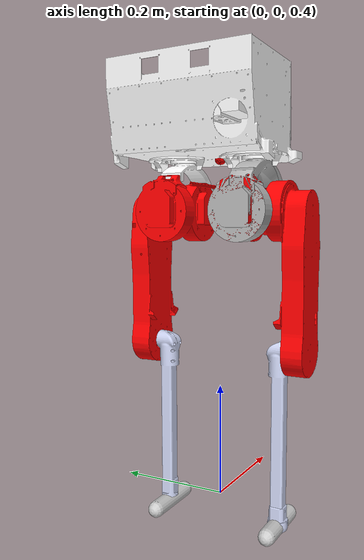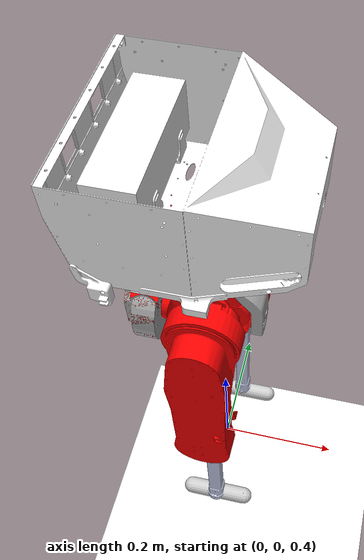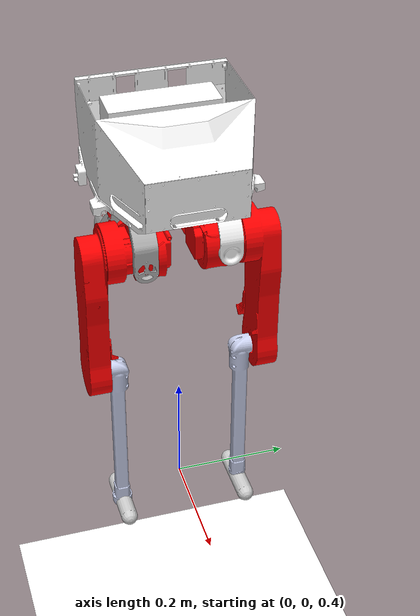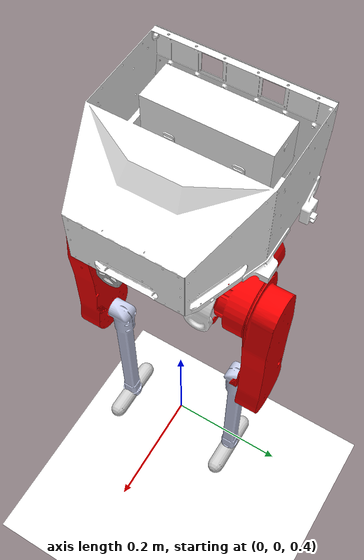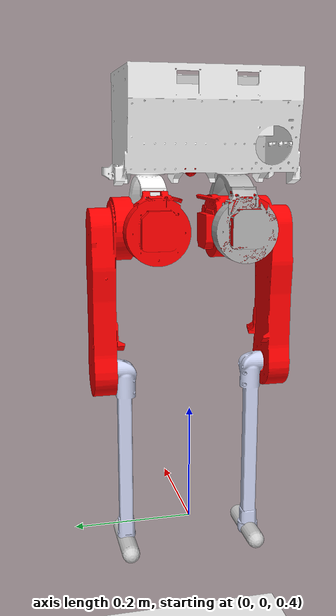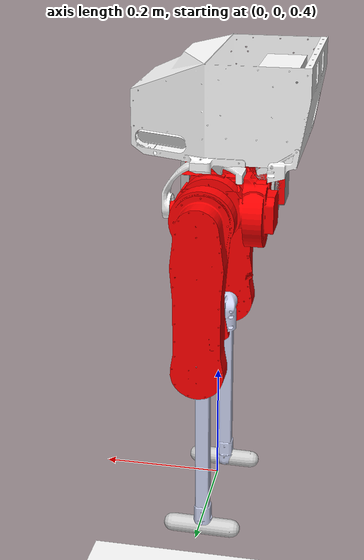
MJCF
<mujoco model="biped flat terrain scene">
  <include file="biped_RL.xml"/>

  <statistic center="0 0 0.1" extent="0.8" meansize="0.04"/>

  <visual>
    <headlight diffuse=".8 .8 .8" ambient=".2 .2 .2" specular="1 1 1"/>
    <rgba force="1 0 0 1"/>
    <global azimuth="120" elevation="-20"/>
    <map force="0.01"/>
    <scale forcewidth="0.3" contactwidth="0.5" contactheight="0.2"/>
    <quality shadowsize="8192"/>
  </visual>

  <asset>
    <texture type="skybox" builtin="gradient" rgb1="1 1 1" rgb2="1 1 1" width="800" height="800"/>
    <texture type="2d" name="groundplane" builtin="checker" mark="edge" rgb1="1 1 1" rgb2="1 1 1" markrgb="0 0 0"
      width="300" height="300"/>
    <material name="groundplane" texture="groundplane" texuniform="true" texrepeat="5 5" reflectance="0"/>
  </asset>

  <worldbody>
    <geom name="floor" size="0 0 0.01" type="plane" material="groundplane"
        contype="1" conaffinity="0" priority="1" friction="0.6" condim="3"/>
  </worldbody>
  <keyframe>
    <key name="home"
      qpos="
        0 0 0.6
        1 0 0 0
        0.0 -0.03 0.944 -1.598 0.654
        0.0 0.23 0.534 -0.92 0.386"
      ctrl="
        0.0 -0.03 0.944 -1.598 0.654
        0.0 0.23 0.534 -0.92 0.386"/>
    <key name="default"
      qpos="
        0 0 0.6
        1 0 0 0
        0.0 0.0 0.5 -0.92 0.386
        0.0 0.0 0.5 -0.92 0.386"
      ctrl="
        0.0 0.0 0.5 -0.92 0.386
        0.0 0.0 0.5 -0.92 0.386"/>
  </keyframe>
</mujoco>

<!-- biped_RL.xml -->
<mujoco model="biped">
  <compiler angle="radian" meshdir="../meshes_v2/" autolimits="true"/>
  <option integrator="RK4"/>
  <default/>
  <asset>
    <mesh name="base_link_v2" file="base_link_v2.STL"/>
    <mesh name="R_HIP" file="R_HIP.STL"/>
    <mesh name="R_SHOULDER" file="R_SHOULDER.STL"/>
    <mesh name="R_UPPER_LEG" file="R_UPPER_LEG.STL"/>
    <mesh name="R_LOWER_LEG" file="R_LOWER_LEG.STL"/>
    <mesh name="R_FOOT" file="R_FOOT.STL"/>
    <mesh name="L_HIP" file="L_HIP.STL"/>
    <mesh name="L_SHOULDER" file="L_SHOULDER.STL"/>
    <mesh name="L_UPPER_LEG" file="L_UPPER_LEG.STL"/>
    <mesh name="L_LOWER_LEG" file="L_LOWER_LEG.STL"/>
    <mesh name="L_FOOT" file="L_FOOT.STL"/>

    <texture type="skybox" builtin="gradient" width="128" height="128" rgb1=".4 .6 .8" rgb2="0 0 0"/>

    <texture builtin="checker" height="100" name="texplane" rgb1="0.14 0.31 0.27" rgb2="0.47 0.63 0.6" type="2d" width="100"/>
    <material name="MatPlane" reflectance="0.5" shininess="1" specular="1" texrepeat="60 60"  texture="texplane"/>
  </asset>

  <sensor>
    <gyro name="gyro" site="imu_location_vectornav" />
    <accelerometer name="accelerometer" site="imu_location_vectornav" />
    <velocimeter site="imu_location" name="local_linvel"/>
    <framezaxis objtype="site" objname="imu_location" name="upvector"/>
    <framexaxis objtype="site" objname="imu_location" name="forwardvector"/>
    <framelinvel objtype="site" objname="imu_location" name="global_linvel"/>
    <frameangvel objtype="site" objname="imu_location" name="global_angvel"/>
    <framepos objtype="site" objname="imu_location" name="position"/>
    <framequat objtype="site" objname="imu_location" name="orientation"/>
    <framelinvel objtype="site" objname="l_foot" name="l_foot_global_linvel"/>
    <framelinvel objtype="site" objname="r_foot" name="r_foot_global_linvel"/>
    <framexaxis objtype="site" objname="l_foot" name="l_foot_upvector"/>
    <framexaxis objtype="site" objname="r_foot" name="r_foot_upvector"/>
    <framepos objtype="site" objname="l_foot" name="l_foot_pos"/>
    <framepos objtype="site" objname="r_foot" name="r_foot_pos"/>

  </sensor>
      <equality>
		<weld body1="base_link" solimp="1.0 1.0 1.0" solref="0.06 1"></weld>
	</equality>

  <worldbody>

    <body name="base_link" pos="0.0 0.0 1.0">
    <camera name="front" pos="1.210 -0.435 0.32" xyaxes="0.342 0.940 0.000 -0.321 0.117 0.940" mode="trackcom"/>
    <camera name="track" pos="0.805 -1.105 0.2" xyaxes="0.814 0.580 0.000 -0.140 0.196 0.971" mode="trackcom"/>
      <inertial pos="-0.022 0 0.068" quat="1. 0. 0. 0." mass="3.272" diaginertia="0.018 0.030 0.026" />
      <geom name="base_link" type="mesh" contype="0" conaffinity="0" rgba="1 1 1 1" mesh="base_link_v2"/>
      <joint armature="0" damping="0" limited="false" name="root" pos="0 0 0" stiffness="0" type="free"/>
      <site name="imu_location" pos="0 0 0" euler="0 0 0" size="0.01" type="sphere" rgba="1 0 0 1"/>
      <site name="imu_location_vectornav" pos="0 0 0" euler="-3.141592 0 0" size="0.01" type="sphere" rgba="1 0 0 1"/>

      <body name="L_HIP" pos="0 0.07 -0.005">
        <inertial pos="-0.0542 0 -0.072" mass="0.624" diaginertia="0.0018 0.001 0.001"/>
        <joint name="L_YAW" pos="0 0 0" axis="0 0 1" limited="true" range="-0.3 0.3"/>
        <geom name="L_HIP" type="mesh" contype="0" conaffinity="0" rgba="1 1 1 1" mesh="L_HIP"/>

        <body name="L_SHOULDER" pos="0.005 0 -0.086">
          <inertial pos="-0.0020134 -0.022813 -0.00077458" quat="0.5 0.5 0.5 0.5" mass="0.524" diaginertia="0.00068 0.00048 0.0003"/>
          <joint name="L_HAA" pos="0 0 0" axis="1 0 0" limited="true" range="-0.25 0.25"/>
          <geom name="L_SHOULDER" type="mesh" contype="0" conaffinity="0" rgba="1 0 0 1" mesh="L_SHOULDER"/>

          <body name="L_UPPER_LEG" pos="0 0 0">
            <inertial pos="3.4626e-05 0.058 -0.054" mass="0.88" diaginertia="0.008 0.008 0.001"/>
            <joint name="L_HFE" pos="0 0 0" axis="0 1 0" limited="true" range="-1.5 1.5"/>
            <geom name="L_UPPER_LEG" type="mesh" contype="0" conaffinity="0"  rgba="1 0 0 1" mesh="L_UPPER_LEG"/>

            <body name="L_LOWER_LEG" pos="0 0.0589 -0.23405">
              <inertial pos="-1.356e-05 -0.017 -0.15" mass="0.118" diaginertia="0.001 0.001 1e-05"/>
              <joint name="L_KFE" pos="0 0 0" axis="0 1 0" limited="true" range="-2.2 2.2"/>
              <geom name="L_LOWER_LEG" type="mesh" contype="0" conaffinity="0" rgba="0.792157 0.819608 0.933333 1" mesh="L_LOWER_LEG"/>

              <body name="L_FOOT" pos="0.0019 -0.0173 -0.30326">
                <inertial pos="-0.00185 -4.9998e-05 -0.0083528" quat="0.710914 0 0.703279 0" mass="0.03134" diaginertia="3.39896e-05 3.35525e-05 1.53506e-06"/>
                <joint name="L_ANKLE" pos="0 0 0" axis="0 1 0" limited="true" range="-0.7 0.7"/>
                <geom name="L_FOOT" friction="1. 0.3 0.3" size="0.015 0.05" pos="0 0 -0.01" quat="0.710914 0 0.703279 0"  type="capsule" rgba="0.8 0.8 0.8 1"/>
                <site name="l_foot" quat="0.710914 0 0.703279 0"/>

              </body> <!--  L_FOOT -->
            </body> <!--  L_LOWER_LEG -->
          </body> <!--  L_UPPER_LEG -->
        </body> <!--  L_SHOULDER -->
      </body> <!--  L_HIP -->

      <body name="R_HIP" pos="0 -0.07 -0.005">
        <inertial pos="-0.0542 0 -0.072" mass="0.624" diaginertia="0.0018 0.001 0.001"/>
        <joint name="R_YAW" pos="0 0 0" axis="0 0 1" limited="true" range="-0.3 0.3"/>
        <geom name="R_HIP" type="mesh" contype="0" conaffinity="0" rgba="0.69804 0.69804 0.69804 1" mesh="R_HIP"/>

        <body name="R_SHOULDER" pos="0.005 0 -0.086">
          <inertial pos="-0.0020134 0.022813 -0.00077458" quat="0.5 0.5 0.5 0.5" mass="0.524" diaginertia="0.00068 0.00048 0.0003"/>
          <joint name="R_HAA" pos="0 0 0" axis="1 0 0" limited="true" range="-0.25 0.25"/>
          <geom name="R_SHOULDER" type="mesh" contype="0" conaffinity="0" rgba="1 0 0 1" mesh="R_SHOULDER"/>

          <body name="R_UPPER_LEG" pos="0 0 0">
            <inertial pos="0 -0.058 -0.054" quat="1. 0. 0. 0." mass="0.88" diaginertia="0.008 0.008 0.001"/>
            <joint name="R_HFE" pos="0 0 0" axis="0 1 0" limited="true" range="-1.5 1.5"/>
            <geom name="R_UPPER_LEG" type="mesh" contype="0" conaffinity="0" rgba="1 0 0 1" mesh="R_UPPER_LEG"/>

            <body name="R_LOWER_LEG" pos="0 -0.0584 -0.23405">
              <inertial pos="0 0.017 -0.15" quat="1. 0. 0. 0." mass="0.118" diaginertia="0.001 0.001 1e-05"/>
              <joint name="R_KFE" pos="0 0 0" axis="0 1 0" limited="true" range="-2.2 2.2"/>
              <geom name="R_LOWER_LEG" type="mesh" contype="0" conaffinity="0" rgba="0.792157 0.819608 0.933333 1" mesh="R_LOWER_LEG"/>

              <body name="R_FOOT" pos="0.0019 0.0173 -0.30326">
                <inertial pos="-0.00185 4.9998e-05 -0.0083528" quat="0.710914 0 0.703279 0" mass="0.03134" diaginertia="3.39896e-05 3.35525e-05 1.53506e-06"/>
                <joint name="R_ANKLE" pos="0 0 0" axis="0 1 0" limited="true" range="-0.7 0.7"/>
                <geom name="R_FOOT" friction="1. 0.3 0.3" size="0.015 0.05" pos="0 0 -0.01" quat="0.710914 0 0.703279 0"  type="capsule" rgba="0.8 0.8 0.8 1"/>
                <site name="r_foot" quat="0.710914 0 0.703279 0"/>

              </body> <!--  R_FOOT -->
            </body> <!--  R_LOWER_LEG -->
          </body> <!--  R_UPPER_LEG -->
        </body> <!--  R_SHOULDER -->
      </body> <!--  R_HIP -->

    </body> <!--  base_link -->
  </worldbody>

    <actuator>
      <position name="L_YAW" joint="L_YAW" kp="38.1" kv="0.5"/>
      <position name="L_HAA" joint="L_HAA" kp="38.1" kv="3.18"/>
      <position name="L_HFE" joint="L_HFE" kp="38.1" kv="3.18"/>
      <position name="L_KFE" joint="L_KFE" kp="38.1" kv="0.95"/>
      <position name="L_ANKLE" joint="L_ANKLE" kp="0.1" kv="0.005"/>

      <position name="R_YAW" joint="R_YAW" kp="38.1" kv="0.5"/>
      <position name="R_HAA" joint="R_HAA" kp="38.1" kv="3.18"/>
      <position name="R_HFE" joint="R_HFE" kp="38.1" kv="3.18"/>
      <position name="R_KFE" joint="R_KFE" kp="38.1" kv="0.95"/>
      <position name="R_ANKLE" joint="R_ANKLE" kp="0.1" kv="0.005"/>
    </actuator>

</mujoco>
